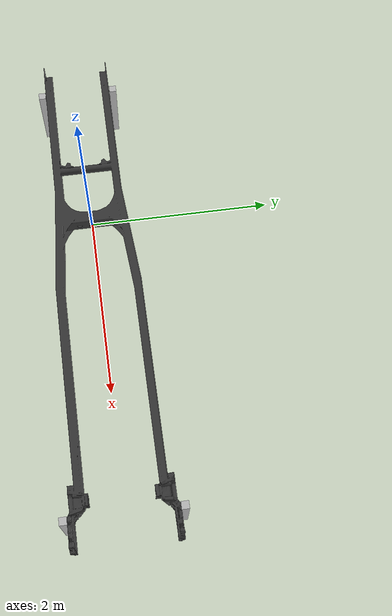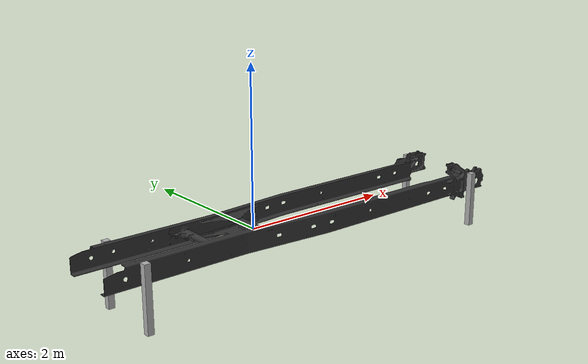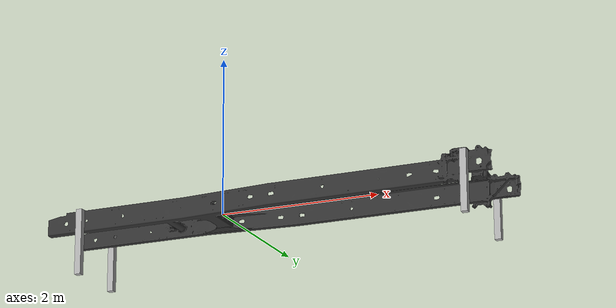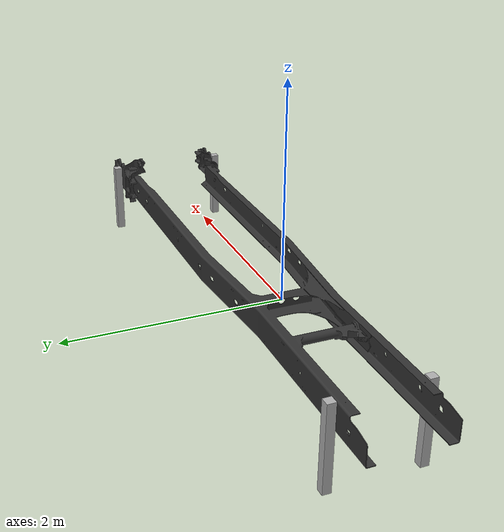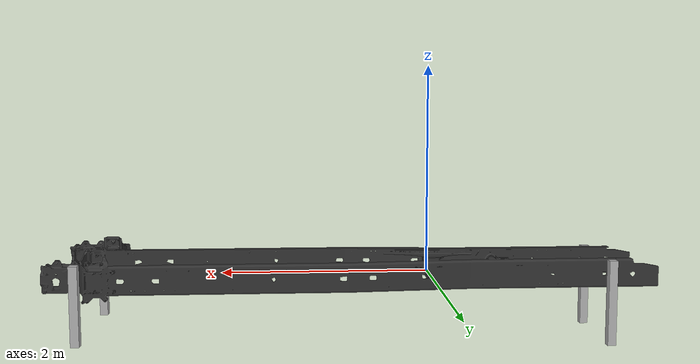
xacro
<?xml version="1.0"?>
<robot name="truck_f" xmlns:xacro="http://wiki.ros.org/xacro">

        <xacro:property name="leg_width" value="0.08" />
        <xacro:property name="leg_length_front" value="0.74" />
        <xacro:property name="leg_length_rear" value="0.82" />
        <xacro:property name="pi" value="3.1415926535897931" />
        <xacro:property name="leg_spread_front" value="1.2" />
        <xacro:property name="leg_spread_rear" value="0.85" />
        <xacro:property name="leg_offset_rear" value="1.72" />
        <xacro:property name="leg_offset_front" value="3.27" />
        <xacro:property name="leg_offset_top" value="0.25" />

    <link name="truck_frame">
        <visual>
            <origin xyz="0 0 0" rpy="3.1415926535897931 0 0" />
            <geometry>
                <mesh filename="package://truck_frame_support/meshes/visual/truck_frame.stl" scale="0.001 0.001 0.001"/>
            </geometry>
            <material name="black">
                <color rgba="0.2 0.2 0.2 1"/>
            </material>
        </visual>
        <collision>
            <origin xyz="0 0 0" rpy="3.1415926535897931 0 0" />
            <geometry>
                <mesh filename="package://truck_frame_support/meshes/collision/truck_frame.stl" scale="0.001 0.001 0.001"/>
            </geometry>
        </collision>
		<inertial>
            <mass value="10"/>
            <inertia ixx="0.4" ixy="0.0" ixz="0.0" iyy="0.4" iyz="0.0" izz="0.2"/>
        </inertial>
    </link>

    <joint name="base_to_front_left_leg" type="fixed">
        <parent link="truck_frame"/>
        <child link="front_left_leg"/>
        <origin xyz="3.27 0.6 0.2" />
    </joint>

    <link name="front_left_leg">
        <visual>
            <geometry>
                <box size="0.08 0.08 0.74"/>
            </geometry>
            <origin xyz="0 0 -0.37" rpy="0 0 0"/>
            <material name="aluminium">
                <color rgba="0.7 0.7 0.7 1.0"/>
            </material>
        </visual>
        <collision>
            <geometry>
                <box size="0.08 0.08 0.74"/>
            </geometry>
            <origin xyz="0 0 -0.37" rpy="0 0 0"/>
        </collision>
		<inertial>
            <mass value="10"/>
            <inertia ixx="0.4" ixy="0.0" ixz="0.0" iyy="0.4" iyz="0.0" izz="0.2"/>
        </inertial>
    </link>

    <joint name="base_to_front_right_leg" type="fixed">
        <parent link="truck_frame"/>
        <child link="front_right_leg"/>
        <origin xyz="3.27 -0.6 0.2" />
    </joint>

    <link name="front_right_leg">
        <visual>
            <geometry>
                <box size="0.08 0.08 0.74"/>
            </geometry>
            <origin xyz="0 0 -0.37" rpy="0 0 0"/>
            <material name="aluminium">
                <color rgba="0.7 0.7 0.7 1.0"/>
            </material>
        </visual>
        <collision>
            <geometry>
                <box size="0.08 0.08 0.74"/>
            </geometry>
            <origin xyz="0 0 -0.37" rpy="0 0 0"/>
        </collision>
		<inertial>
            <mass value="10"/>
            <inertia ixx="0.4" ixy="0.0" ixz="0.0" iyy="0.4" iyz="0.0" izz="0.2"/>
        </inertial>
    </link>

    <joint name="base_to_rear_left_leg" type="fixed">
        <parent link="truck_frame"/>
        <child link="rear_left_leg"/>
        <origin xyz="-1.72 0.425 0.16" />
    </joint>

    <link name="rear_left_leg">
        <visual>
            <geometry>
                <box size="0.08 0.08 0.82"/>
            </geometry>
            <origin xyz="0 0 -0.41" rpy="0 0 0"/>
            <material name="aluminium">
                <color rgba="0.7 0.7 0.7 1.0"/>
            </material>
        </visual>
        <collision>
            <geometry>
                <box size="0.08 0.08 0.82"/>
            </geometry>
            <origin xyz="0 0 -0.41" rpy="0 0 0"/>
        </collision>
		<inertial>
            <mass value="10"/>
            <inertia ixx="0.4" ixy="0.0" ixz="0.0" iyy="0.4" iyz="0.0" izz="0.2"/>
        </inertial>
    </link>

    <joint name="base_to_rear_right_leg" type="fixed">
        <parent link="truck_frame"/>
        <child link="rear_right_leg"/>
        <origin xyz="-1.72 -0.425 0.16" />
    </joint>

    <link name="rear_right_leg">
        <visual>
            <geometry>
                <box size="0.08 0.08 0.82"/>
            </geometry>
            <origin xyz="0 0 -0.41" rpy="0 0 0"/>
            <material name="aluminium">
                <color rgba="0.7 0.7 0.7 1.0"/>
            </material>
        </visual>
        <collision>
            <geometry>
                <box size="0.08 0.08 0.82"/>
            </geometry>
            <origin xyz="0 0 -0.41" rpy="0 0 0"/>
        </collision>
		<inertial>
            <mass value="10"/>
            <inertia ixx="0.4" ixy="0.0" ixz="0.0" iyy="0.4" iyz="0.0" izz="0.2"/>
        </inertial>
    </link>

</robot>
